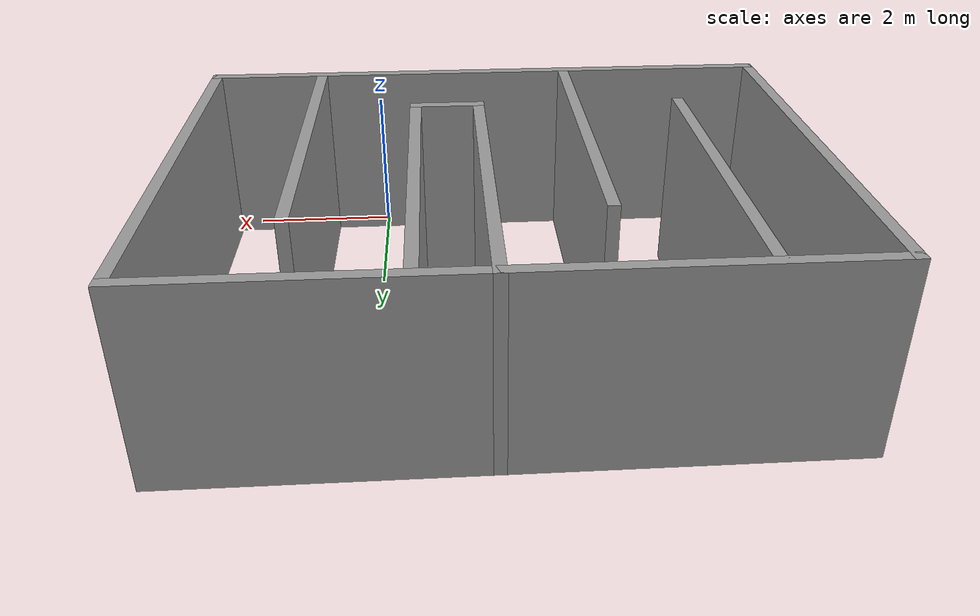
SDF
<?xml version='1.0'?>
<sdf version='1.7'>
  <model name='yoko'>
    <pose>-1.58331 3.06402 0 0 -0 0</pose>
    <link name='Wall_0'>
      <collision name='Wall_0_Collision'>
        <geometry>
          <box>
            <size>6 0.15 2.5</size>
          </box>
        </geometry>
        <pose>0 0 1.25 0 -0 0</pose>
      </collision>
      <visual name='Wall_0_Visual'>
        <pose>0 0 1.25 0 -0 0</pose>
        <geometry>
          <box>
            <size>6 0.15 2.5</size>
          </box>
        </geometry>
        <material>
          <script>
            <uri>file://media/materials/scripts/gazebo.material</uri>
            <name>Gazebo/Grey</name>
          </script>
          <ambient>1 1 1 1</ambient>
        </material>
        <meta>
          <layer>0</layer>
        </meta>
      </visual>
      <pose>-3.925 0.063866 0 0 -0 1.5708</pose>
    </link>
    <link name='Wall_1'>
      <collision name='Wall_1_Collision'>
        <geometry>
          <box>
            <size>8 0.15 2.5</size>
          </box>
        </geometry>
        <pose>0 0 1.25 0 -0 0</pose>
      </collision>
      <visual name='Wall_1_Visual'>
        <pose>0 0 1.25 0 -0 0</pose>
        <geometry>
          <box>
            <size>8 0.15 2.5</size>
          </box>
        </geometry>
        <material>
          <script>
            <uri>file://media/materials/scripts/gazebo.material</uri>
            <name>Gazebo/Grey</name>
          </script>
          <ambient>1 1 1 1</ambient>
        </material>
        <meta>
          <layer>0</layer>
        </meta>
      </visual>
      <pose>0 2.98887 0 0 -0 0</pose>
    </link>
    <link name='Wall_11'>
      <collision name='Wall_11_Collision'>
        <geometry>
          <box>
            <size>4.5 0.15 2.5</size>
          </box>
        </geometry>
        <pose>0 0 1.25 0 -0 0</pose>
      </collision>
      <visual name='Wall_11_Visual'>
        <pose>0 0 1.25 0 -0 0</pose>
        <geometry>
          <box>
            <size>4.5 0.15 2.5</size>
          </box>
        </geometry>
        <material>
          <script>
            <uri>file://media/materials/scripts/gazebo.material</uri>
            <name>Gazebo/Grey</name>
          </script>
          <ambient>1 1 1 1</ambient>
        </material>
        <meta>
          <layer>0</layer>
        </meta>
      </visual>
      <pose>0.184704 0.814016 0 0 -0 1.5708</pose>
    </link>
    <link name='Wall_2'>
      <collision name='Wall_2_Collision'>
        <geometry>
          <box>
            <size>6 0.15 2.5</size>
          </box>
        </geometry>
        <pose>0 0 1.25 0 -0 0</pose>
      </collision>
      <visual name='Wall_2_Visual'>
        <pose>0 0 1.25 0 -0 0</pose>
        <geometry>
          <box>
            <size>6 0.15 2.5</size>
          </box>
        </geometry>
        <material>
          <script>
            <uri>file://media/materials/scripts/gazebo.material</uri>
            <name>Gazebo/Grey</name>
          </script>
          <ambient>1 1 1 1</ambient>
        </material>
        <meta>
          <layer>0</layer>
        </meta>
      </visual>
      <pose>3.925 0.063866 0 0 -0 -1.5708</pose>
    </link>
    <link name='Wall_22'>
      <collision name='Wall_22_Collision'>
        <geometry>
          <box>
            <size>4.5 0.15 2.5</size>
          </box>
        </geometry>
        <pose>0 0 1.25 0 -0 0</pose>
      </collision>
      <visual name='Wall_22_Visual'>
        <pose>0 0 1.25 0 -0 0</pose>
        <geometry>
          <box>
            <size>4.5 0.15 2.5</size>
          </box>
        </geometry>
        <material>
          <script>
            <uri>file://media/materials/scripts/gazebo.material</uri>
            <name>Gazebo/Grey</name>
          </script>
          <ambient>1 1 1 1</ambient>
        </material>
        <meta>
          <layer>0</layer>
        </meta>
      </visual>
      <pose>1.0334 0.679312 0 0 -0 1.5708</pose>
    </link>
    <link name='Wall_3'>
      <collision name='Wall_3_Collision'>
        <geometry>
          <box>
            <size>8 0.15 2.5</size>
          </box>
        </geometry>
        <pose>0 0 1.25 0 -0 0</pose>
      </collision>
      <visual name='Wall_3_Visual'>
        <pose>0 0 1.25 0 -0 0</pose>
        <geometry>
          <box>
            <size>8 0.15 2.5</size>
          </box>
        </geometry>
        <material>
          <script>
            <uri>file://media/materials/scripts/gazebo.material</uri>
            <name>Gazebo/Grey</name>
          </script>
          <ambient>1 1 1 1</ambient>
        </material>
        <meta>
          <layer>0</layer>
        </meta>
      </visual>
      <pose>0 -2.86113 0 0 -0 3.14159</pose>
    </link>
    <link name='Wall_34'>
      <collision name='Wall_34_Collision'>
        <geometry>
          <box>
            <size>4.5 0.15 2.5</size>
          </box>
        </geometry>
        <pose>0 0 1.25 0 -0 0</pose>
      </collision>
      <visual name='Wall_34_Visual'>
        <pose>0 0 1.25 0 -0 0</pose>
        <geometry>
          <box>
            <size>4.5 0.15 2.5</size>
          </box>
        </geometry>
        <material>
          <script>
            <uri>file://media/materials/scripts/gazebo.material</uri>
            <name>Gazebo/Grey</name>
          </script>
          <ambient>1 1 1 1</ambient>
        </material>
        <meta>
          <layer>0</layer>
        </meta>
      </visual>
      <pose>-2.56282 0.713453 0 0 -0 -1.5708</pose>
    </link>
    <link name='Wall_37'>
      <collision name='Wall_37_Collision'>
        <geometry>
          <box>
            <size>4.5 0.15 2.5</size>
          </box>
        </geometry>
        <pose>0 0 1.25 0 -0 0</pose>
      </collision>
      <visual name='Wall_37_Visual'>
        <pose>0 0 1.25 0 -0 0</pose>
        <geometry>
          <box>
            <size>4.5 0.15 2.5</size>
          </box>
        </geometry>
        <material>
          <script>
            <uri>file://media/materials/scripts/gazebo.material</uri>
            <name>Gazebo/Grey</name>
          </script>
          <ambient>1 1 1 1</ambient>
        </material>
        <meta>
          <layer>0</layer>
        </meta>
      </visual>
      <pose>-1.13282 -0.535047 0 0 -0 1.5708</pose>
    </link>
    <link name='Wall_42'>
      <collision name='Wall_42_Collision'>
        <geometry>
          <box>
            <size>1 0.15 2.5</size>
          </box>
        </geometry>
        <pose>0 0 1.25 0 -0 0</pose>
      </collision>
      <visual name='Wall_42_Visual'>
        <pose>0 0 1.25 0 -0 0</pose>
        <geometry>
          <box>
            <size>1 0.15 2.5</size>
          </box>
        </geometry>
        <material>
          <script>
            <uri>file://media/materials/scripts/gazebo.material</uri>
            <name>Gazebo/Grey</name>
          </script>
          <ambient>1 1 1 1</ambient>
        </material>
        <meta>
          <layer>0</layer>
        </meta>
      </visual>
      <pose>0.607226 -1.49568 0 0 -0 0</pose>
    </link>
    <link name='Wall_58'>
      <collision name='Wall_58_Collision'>
        <geometry>
          <box>
            <size>4.75 0.15 2.5</size>
          </box>
        </geometry>
        <pose>0 0 1.25 0 -0 0</pose>
      </collision>
      <visual name='Wall_58_Visual'>
        <pose>0 0 1.25 0 -0 0</pose>
        <geometry>
          <box>
            <size>4.75 0.15 2.5</size>
          </box>
        </geometry>
        <material>
          <script>
            <uri>file://media/materials/scripts/gazebo.material</uri>
            <name>Gazebo/Grey</name>
          </script>
          <ambient>1 1 1 1</ambient>
        </material>
        <meta>
          <layer>0</layer>
        </meta>
      </visual>
      <pose>2.40595 -0.563875 0 0 -0 -1.5708</pose>
    </link>
    <static>1</static>
  </model>
</sdf>
